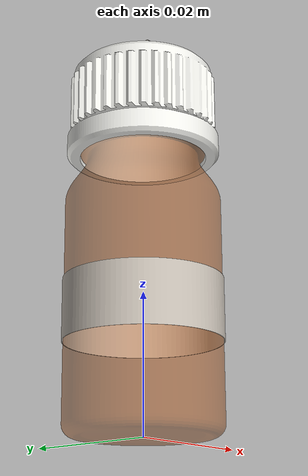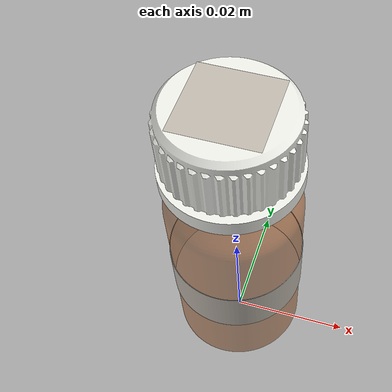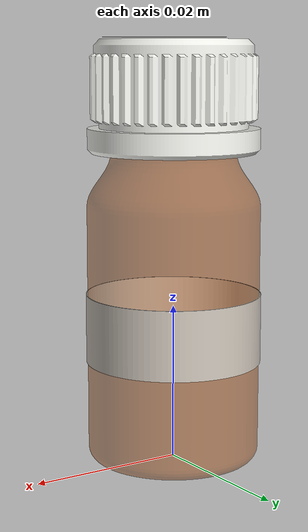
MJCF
<!-- Generated by tools/build_labelled_bottles.py. Citronellyl acetate (liquid),
     10 ml, marker 160, barcode 2004163715809.
     Origin bottom-centre, +Z up, the label's front facing -Y. -->
<mujoco model="SMP-0161">
  <asset>
    <mesh name="flask_10ml_glass" file="meshes/flask_10ml_glass.obj" inertia="exact"/>
    <mesh name="flask_10ml_cap" file="meshes/flask_10ml_cap.obj" inertia="exact"/>
    <mesh name="flask_10ml_label" file="meshes/flask_10ml_label.obj" inertia="shell"/>
    <mesh name="flask_10ml_label_back" file="meshes/flask_10ml_label_back.obj" inertia="shell"/>
    <mesh name="flask_10ml_cap_label" file="meshes/flask_10ml_cap_label.obj" inertia="shell"/>
    <texture name="label" type="2d" file="textures/SMP-0161.png"/>
    <material name="label" texture="label" specular="0.05" shininess="0.1"/>
    <texture name="cap_label" type="2d" file="textures/SMP-0161_cap.png"/>
    <material name="cap_label" texture="cap_label" specular="0.05" shininess="0.1"/>
  </asset>
  <worldbody>
    <body name="SMP-0161">
      <geom name="glass" type="mesh" mesh="flask_10ml_glass" rgba="0.620 0.280 0.050 0.500" density="2500"/>
      <geom name="cap" type="mesh" mesh="flask_10ml_cap" rgba="0.930 0.930 0.910 1.000" density="900"/>
      <geom name="label" type="mesh" mesh="flask_10ml_label" material="label" contype="0" conaffinity="0" mass="0"/>
      <geom name="label_back" type="mesh" mesh="flask_10ml_label_back" rgba="0.950 0.950 0.930 1" contype="0" conaffinity="0" mass="0"/>
      <geom name="cap_label" type="mesh" mesh="flask_10ml_cap_label" material="cap_label" contype="0" conaffinity="0" mass="0"/>
    </body>
  </worldbody>
</mujoco>
